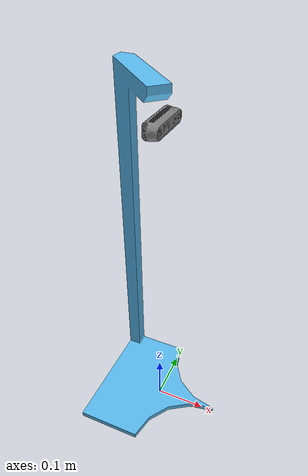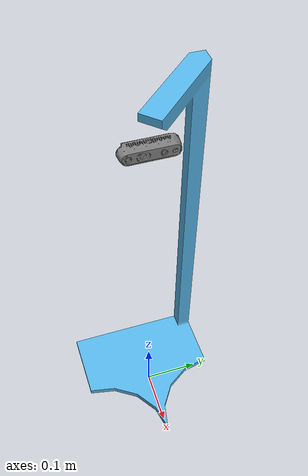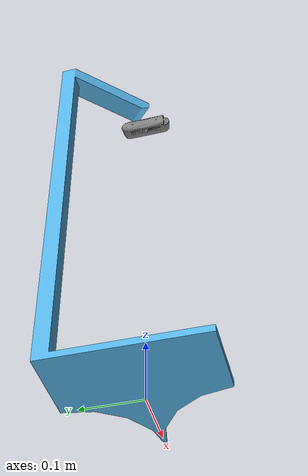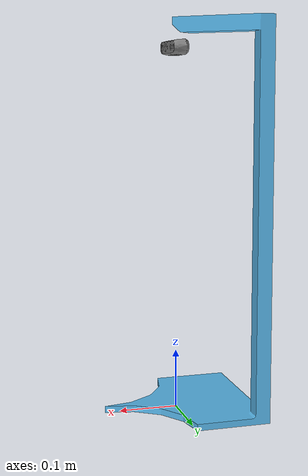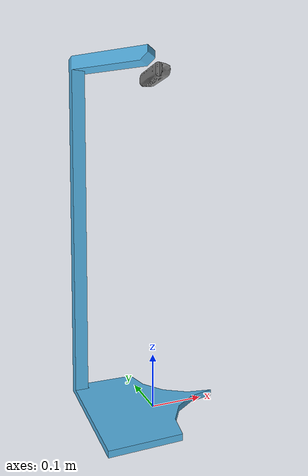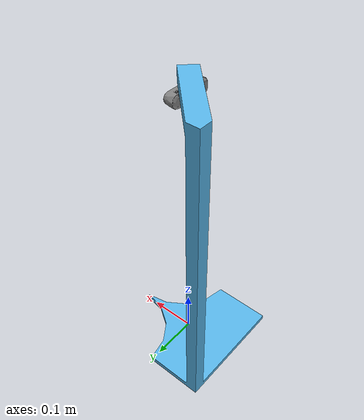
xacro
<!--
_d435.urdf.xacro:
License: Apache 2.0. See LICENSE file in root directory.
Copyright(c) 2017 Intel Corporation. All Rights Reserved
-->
<?xml version="1.0"?>
<robot xmlns:xacro="http://ros.org/wiki/xacro" name="repair_full">

    <xacro:include filename="$(find braccio_description)/urdf/xacros/camera_mount_model.urdf.xacro" />

    <xacro:include filename="$(find braccio_description)/urdf/xacros/_d435.urdf.xacro"/>

    <link name="world"/>

    <xacro:camera_mount parent="world">
    </xacro:camera_mount>

    <xacro:sensor_d435 parent="mount">
        <origin xyz="0.0 0.0 0.6" rpy="0.0 0.0 0.0" />
    </xacro:sensor_d435>

</robot>

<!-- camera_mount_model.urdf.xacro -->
<robot xmlns:xacro="http://ros.org/wiki/xacro">

    <xacro:macro name="camera_mount" params="parent">
        <link name="mount">
            <inertial>
                <origin rpy="1.57 0 0" xyz="0 0.0 0" />
                <mass value="2" />
                <inertia ixx="0.015" ixy="0" ixz="0" iyy="0.00666666666667" iyz="0" izz="0.0216666666667"/>
            </inertial>
            <visual>
                <geometry>
                    <mesh filename="package://braccio_description/stl/camera_mount.stl" scale="0.001 0.001 0.001"/>
                </geometry>
                <material name="dark"/>
                <origin rpy="1.57 0 0" xyz="0 0.0 0" />
            </visual>

            <collision>
                <geometry>
                    <mesh filename="package://braccio_description/stl/camera_mount.stl" scale="0.001 0.001 0.001"/>
                </geometry>
                <origin rpy="1.57 0 0" xyz="0 0.0 0" />
            </collision>
        </link>

        <joint name="mount_joint" type="fixed" >
            <parent link="${parent}" />
            <child link="mount" />
        </joint>
    </xacro:macro>

</robot>

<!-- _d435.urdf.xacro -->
<robot name="sensor_d435" xmlns:xacro="http://ros.org/wiki/xacro">
  <!--File includes-->
  <xacro:include filename="$(find braccio_description)/urdf/xacros/_d435.gazebo.xacro"/>

  <xacro:macro name="sensor_d435" params="name:=camera topics_ns:=camera parent *origin publish_pointcloud:=true">
    <xacro:property name="M_PI" value="3.1415926535897931" />

    <!-- The following values are approximate, and the camera node
     publishing TF values with actual calibrated camera extrinsic values -->
    <xacro:property name="d435_cam_depth_to_left_ir_offset" value="0.0"/>
    <xacro:property name="d435_cam_depth_to_right_ir_offset" value="-0.050"/>
    <xacro:property name="d435_cam_depth_to_color_offset" value="0.015"/>

    <!-- The following values model the aluminum peripherial case for the
    D435 camera, with the camera joint represented by the actual
    peripherial camera tripod mount -->
    <xacro:property name="d435_cam_width" value="0.090"/>
    <xacro:property name="d435_cam_height" value="0.025"/>
    <xacro:property name="d435_cam_depth" value="0.02505"/>
    <xacro:property name="d435_cam_mount_from_center_offset" value="0.0149"/>

    <!-- The following offset is relative the the physical D435 camera peripherial
    camera tripod mount -->
    <xacro:property name="d435_cam_depth_px" value="${d435_cam_mount_from_center_offset}"/>
    <xacro:property name="d435_cam_depth_py" value="0.0175"/>
    <xacro:property name="d435_cam_depth_pz" value="${d435_cam_height/2}"/>

    <material name="${name}_aluminum">
    <color rgba="0.5 0.5 0.5 1"/>
    </material>

    <joint name="${name}_joint" type="fixed">
      <xacro:insert_block name="origin" />
      <parent link="${parent}"/>
      <child link="${name}_bottom_screw_frame" />
    </joint>
     <!-- camera body, with origin at bottom screw mount -->
    <link name="${name}_bottom_screw_frame"/>

    <joint name="${name}_link_joint" type="fixed">
      <origin xyz="0 ${d435_cam_depth_py} ${d435_cam_depth_pz}" rpy="0 0 0"/>
      <parent link="${name}_bottom_screw_frame"/>
      <child link="${name}_link" />
    </joint>

    <link name="${name}_link">
      <visual>
      <origin xyz="${d435_cam_mount_from_center_offset} ${-d435_cam_depth_py} 0" rpy="${M_PI/2} 0 ${M_PI/2}"/>
        <geometry>
          <mesh filename="$(find realsense2_description)/meshes/d435.dae" />
        </geometry>
        <material name="${name}_aluminum"/>
      </visual>
      <collision>
        <origin xyz="0 ${-d435_cam_depth_py} 0" rpy="0 0 0"/>
        <geometry>
        <box size="${d435_cam_depth} ${d435_cam_width} ${d435_cam_height}"/>
        </geometry>
      </collision>
      <inertial>
        <!-- The following are not reliable values, and should not be used for modeling -->
        <mass value="0.564" />
        <origin xyz="0 0 0" />
        <inertia ixx="0.003881243" ixy="0.0" ixz="0.0" iyy="0.000498940" iyz="0.0" izz="0.003879257" />
      </inertial>
    </link>

    <!-- camera depth joints and links -->
    <joint name="${name}_depth_joint" type="fixed">
      <origin xyz="0 0 0" rpy="0 0 0"/>
      <parent link="${name}_link"/>
      <child link="${name}_depth_frame" />
    </joint>
    <link name="${name}_depth_frame"/>

    <joint name="${name}_depth_optical_joint" type="fixed">
      <origin xyz="0 0 0" rpy="${-M_PI/2} 0 ${-M_PI/2}" />
      <parent link="${name}_depth_frame" />
      <child link="${name}_depth_optical_frame" />
    </joint>
    <link name="${name}_depth_optical_frame"/>

    <!-- camera left IR joints and links -->
    <joint name="${name}_left_ir_joint" type="fixed">
      <origin xyz="0 ${d435_cam_depth_to_left_ir_offset} 0" rpy="0 0 0" />
      <parent link="${name}_depth_frame" />
      <child link="${name}_left_ir_frame" />
    </joint>
    <link name="${name}_left_ir_frame"/>

    <joint name="${name}_left_ir_optical_joint" type="fixed">
      <origin xyz="0 0 0" rpy="${-M_PI/2} 0 ${-M_PI/2}" />
      <parent link="${name}_left_ir_frame" />
      <child link="${name}_left_ir_optical_frame" />
    </joint>
    <link name="${name}_left_ir_optical_frame"/>

    <!-- camera right IR joints and links -->
    <joint name="${name}_right_ir_joint" type="fixed">
      <origin xyz="0 ${d435_cam_depth_to_right_ir_offset} 0" rpy="0 0 0" />
      <parent link="${name}_depth_frame" />
      <child link="${name}_right_ir_frame" />
    </joint>
    <link name="${name}_right_ir_frame"/>

    <joint name="${name}_right_ir_optical_joint" type="fixed">
      <origin xyz="0 0 0" rpy="${-M_PI/2} 0 ${-M_PI/2}" />
      <parent link="${name}_right_ir_frame" />
      <child link="${name}_right_ir_optical_frame" />
    </joint>
    <link name="${name}_right_ir_optical_frame"/>

    <!-- camera color joints and links -->
    <joint name="${name}_color_joint" type="fixed">
      <origin xyz="0 ${d435_cam_depth_to_color_offset} 0" rpy="0 0 0" />
      <parent link="${name}_depth_frame" />
      <child link="${name}_color_frame" />
    </joint>
    <link name="${name}_color_frame"/>

    <joint name="${name}_color_optical_joint" type="fixed">
      <origin xyz="0 0 0" rpy="${-M_PI/2} 0 ${-M_PI/2}" />
      <parent link="${name}_color_frame" />
      <child link="${name}_color_optical_frame" />
    </joint>
    <link name="${name}_color_optical_frame"/>

    <!-- Realsense Gazebo Plugin -->
    <xacro:gazebo_d435 camera_name="${name}" reference_link="${name}_link" topics_ns="${topics_ns}" depth_optical_frame="${name}_depth_optical_frame" color_optical_frame="${name}_color_optical_frame" infrared1_optical_frame="${name}_left_ir_optical_frame" infrared2_optical_frame="${name}_right_ir_optical_frame" publish_pointcloud="${publish_pointcloud}"/>

  </xacro:macro>

</robot>
